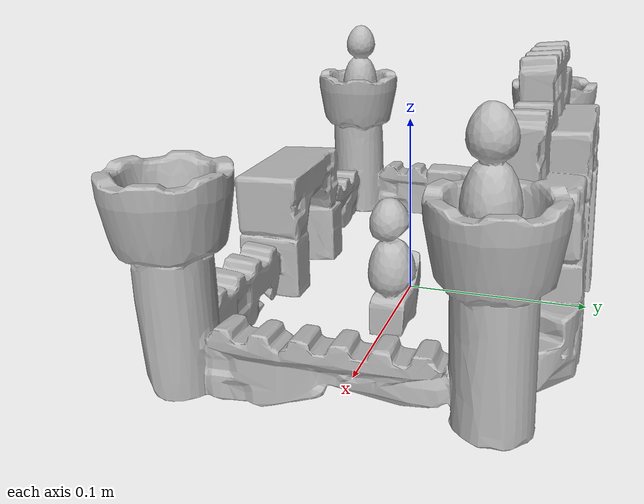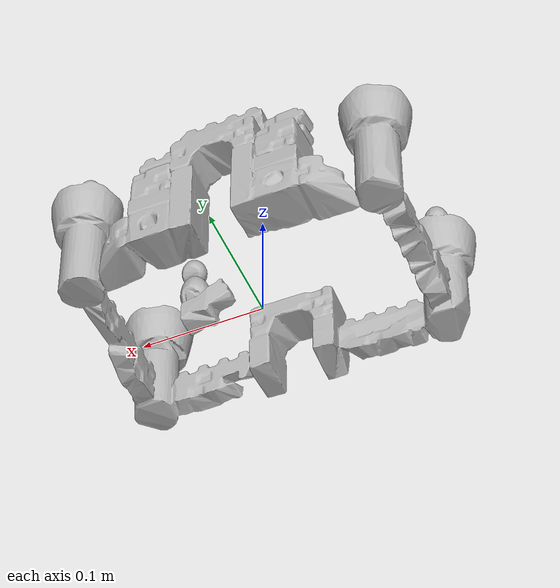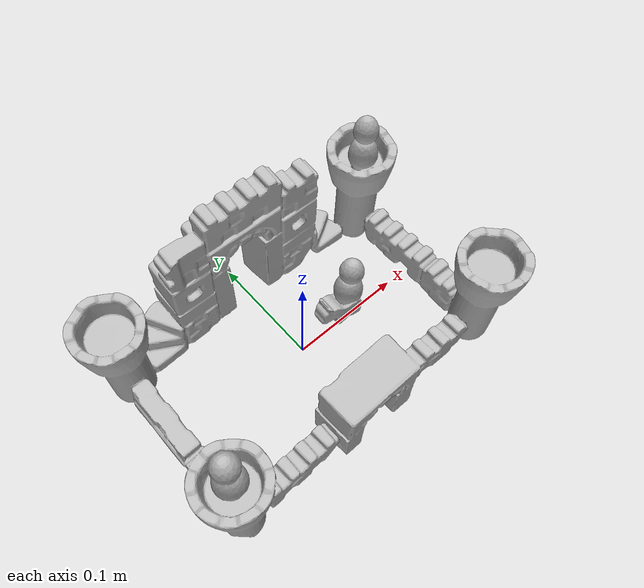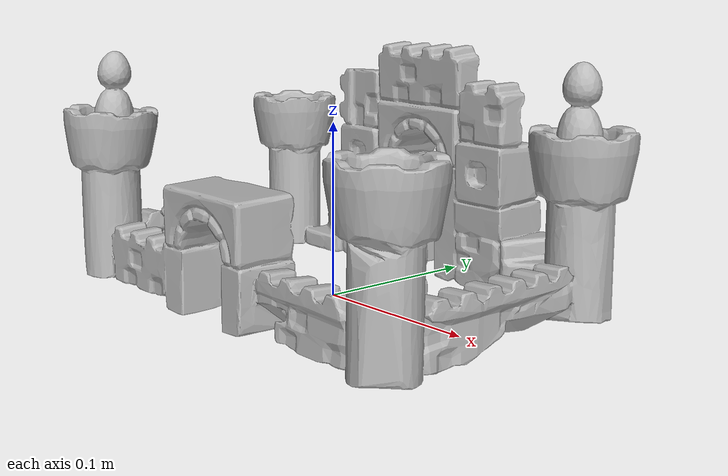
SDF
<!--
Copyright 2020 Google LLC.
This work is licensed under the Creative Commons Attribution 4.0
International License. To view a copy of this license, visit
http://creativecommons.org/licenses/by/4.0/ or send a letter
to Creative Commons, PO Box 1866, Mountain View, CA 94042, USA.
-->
<?xml version="1.0" ?>
<sdf version="1.6">
  <model name="JA_Henckels_International_Premio_Cutlery_Block_Set_14Piece">
    <link name="link_0">
      <visual name="visual">
        <geometry>
          <mesh>
            <uri>meshes/model.obj</uri>
          </mesh>
        </geometry>
      </visual>
      <collision name="collision_0">
        <geometry>
          <mesh>
            <uri>meshes/model.obj</uri>
          </mesh>
        </geometry>
      </collision>
    </link>
  </model>
</sdf>
